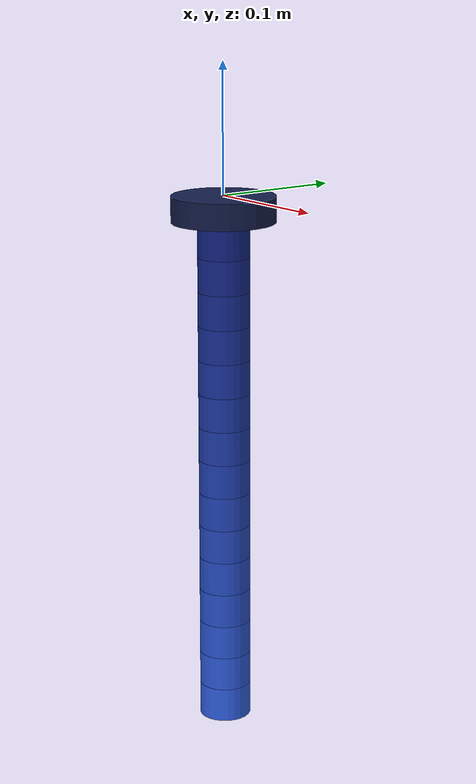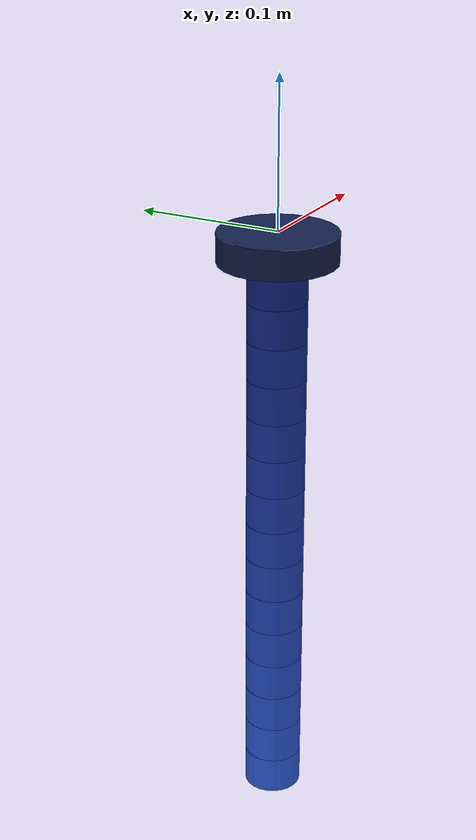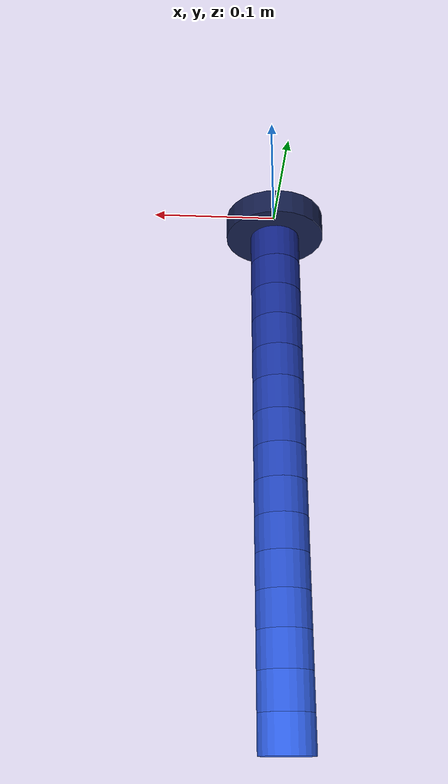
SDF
<?xml version="1.0" encoding="UTF-8"?>
<sdf version='1.9'>
  <model name='continuum_arm_pcc'>
    <self_collide>false</self_collide>
    <static>false</static>

    <link name="continuum_arm_pcc/base_cyl">
      <pose>0 0 -0.01000 0 0 0</pose>
      <gravity>true</gravity>
      <self_collide>false</self_collide>
      <velocity_decay/>
      <inertial>
        <mass>0.078431</mass>
        <inertia>
          <ixx>3.398693e-05</ixx>
          <iyy>3.398693e-05</iyy>
          <izz>6.274510e-05</izz>
        </inertia>
      </inertial>
      <collision name="continuum_arm_pcc/base_cyl_collision">
        <geometry>
          <cylinder><radius>0.04</radius><length>0.02</length></cylinder>
        </geometry>
      </collision>
      <visual name="continuum_arm_pcc/base_cyl_visual">
        <geometry>
          <cylinder><radius>0.04</radius><length>0.02</length></cylinder>
        </geometry>
        <material>
          <ambient>0.05 0.08 0.20 1</ambient>
          <diffuse>0.08 0.12 0.30 1</diffuse>
          <specular>0.2 0.2 0.2 1</specular>
        </material>
      </visual>
    </link>
    <!-- Segment 1/15 -->
    <link name="continuum_arm_pcc/segment_1">
      <pose>0 0 -0.03333 0 0 0</pose>
      <gravity>true</gravity>
      <self_collide>false</self_collide>
      <velocity_decay/>
      <inertial>
        <mass>0.011438</mass>
        <inertia>
          <ixx>2.464975e-06</ixx>
          <iyy>2.464975e-06</iyy>
          <izz>3.574346e-06</izz>
        </inertia>
      </inertial>
      <collision name="continuum_arm_pcc/segment_1_collision">
        <geometry>
          <cylinder><radius>0.02</radius><length>0.02666666666666667</length></cylinder>
        </geometry>
      </collision>
      <visual name="continuum_arm_pcc/segment_1_visual">
        <geometry>
          <cylinder><radius>0.02</radius><length>0.02666666666666667</length></cylinder>
        </geometry>
        <material>
          <ambient>0.050 0.080 0.350 1</ambient>
          <diffuse>0.080 0.150 0.550 1</diffuse>
          <specular>0.2 0.2 0.2 1</specular>
        </material>
      </visual>
    </link>
    <joint name="continuum_arm_pcc/joint_1" type="universal">
      <parent>continuum_arm_pcc/base_cyl</parent>
      <child>continuum_arm_pcc/segment_1</child>
      <pose>0 0 0.01333 0 0 0</pose>
      <axis>
        <xyz>1 0 0</xyz>
        <limit>
          <lower>-0.8</lower>
          <upper>0.8</upper>
          <effort>0.24</effort>
          <velocity>5.0</velocity>
        </limit>
        <dynamics>
          <spring_stiffness>1.61068</spring_stiffness>
          <spring_reference>0.0</spring_reference>
          <damping>0.08</damping>
        </dynamics>
      </axis>
      <axis2>
        <xyz>0 1 0</xyz>
        <limit>
          <lower>-0.8</lower>
          <upper>0.8</upper>
          <effort>0.24</effort>
          <velocity>5.0</velocity>
        </limit>
        <dynamics>
          <spring_stiffness>1.61068</spring_stiffness>
          <spring_reference>0.0</spring_reference>
          <damping>0.08</damping>
        </dynamics>
      </axis2>
    </joint>
    <!-- Segment 2/15 -->
    <link name="continuum_arm_pcc/segment_2">
      <pose>0 0 -0.06000 0 0 0</pose>
      <gravity>true</gravity>
      <self_collide>false</self_collide>
      <velocity_decay/>
      <inertial>
        <mass>0.011438</mass>
        <inertia>
          <ixx>2.464975e-06</ixx>
          <iyy>2.464975e-06</iyy>
          <izz>3.574346e-06</izz>
        </inertia>
      </inertial>
      <collision name="continuum_arm_pcc/segment_2_collision">
        <geometry>
          <cylinder><radius>0.02</radius><length>0.02666666666666667</length></cylinder>
        </geometry>
      </collision>
      <visual name="continuum_arm_pcc/segment_2_visual">
        <geometry>
          <cylinder><radius>0.02</radius><length>0.02666666666666667</length></cylinder>
        </geometry>
        <material>
          <ambient>0.057 0.093 0.382 1</ambient>
          <diffuse>0.089 0.168 0.579 1</diffuse>
          <specular>0.2 0.2 0.2 1</specular>
        </material>
      </visual>
    </link>
    <joint name="continuum_arm_pcc/joint_2" type="universal">
      <parent>continuum_arm_pcc/segment_1</parent>
      <child>continuum_arm_pcc/segment_2</child>
      <pose>0 0 0.01333 0 0 0</pose>
      <axis>
        <xyz>1 0 0</xyz>
        <limit>
          <lower>-0.8</lower>
          <upper>0.8</upper>
          <effort>0.24</effort>
          <velocity>5.0</velocity>
        </limit>
        <dynamics>
          <spring_stiffness>1.61068</spring_stiffness>
          <spring_reference>0.0</spring_reference>
          <damping>0.08</damping>
        </dynamics>
      </axis>
      <axis2>
        <xyz>0 1 0</xyz>
        <limit>
          <lower>-0.8</lower>
          <upper>0.8</upper>
          <effort>0.24</effort>
          <velocity>5.0</velocity>
        </limit>
        <dynamics>
          <spring_stiffness>1.61068</spring_stiffness>
          <spring_reference>0.0</spring_reference>
          <damping>0.08</damping>
        </dynamics>
      </axis2>
    </joint>
    <!-- Segment 3/15 -->
    <link name="continuum_arm_pcc/segment_3">
      <pose>0 0 -0.08667 0 0 0</pose>
      <gravity>true</gravity>
      <self_collide>false</self_collide>
      <velocity_decay/>
      <inertial>
        <mass>0.011438</mass>
        <inertia>
          <ixx>2.464975e-06</ixx>
          <iyy>2.464975e-06</iyy>
          <izz>3.574346e-06</izz>
        </inertia>
      </inertial>
      <collision name="continuum_arm_pcc/segment_3_collision">
        <geometry>
          <cylinder><radius>0.02</radius><length>0.02666666666666667</length></cylinder>
        </geometry>
      </collision>
      <visual name="continuum_arm_pcc/segment_3_visual">
        <geometry>
          <cylinder><radius>0.02</radius><length>0.02666666666666667</length></cylinder>
        </geometry>
        <material>
          <ambient>0.064 0.106 0.414 1</ambient>
          <diffuse>0.097 0.186 0.607 1</diffuse>
          <specular>0.2 0.2 0.2 1</specular>
        </material>
      </visual>
    </link>
    <joint name="continuum_arm_pcc/joint_3" type="universal">
      <parent>continuum_arm_pcc/segment_2</parent>
      <child>continuum_arm_pcc/segment_3</child>
      <pose>0 0 0.01333 0 0 0</pose>
      <axis>
        <xyz>1 0 0</xyz>
        <limit>
          <lower>-0.8</lower>
          <upper>0.8</upper>
          <effort>0.24</effort>
          <velocity>5.0</velocity>
        </limit>
        <dynamics>
          <spring_stiffness>1.61068</spring_stiffness>
          <spring_reference>0.0</spring_reference>
          <damping>0.08</damping>
        </dynamics>
      </axis>
      <axis2>
        <xyz>0 1 0</xyz>
        <limit>
          <lower>-0.8</lower>
          <upper>0.8</upper>
          <effort>0.24</effort>
          <velocity>5.0</velocity>
        </limit>
        <dynamics>
          <spring_stiffness>1.61068</spring_stiffness>
          <spring_reference>0.0</spring_reference>
          <damping>0.08</damping>
        </dynamics>
      </axis2>
    </joint>
    <!-- Segment 4/15 -->
    <link name="continuum_arm_pcc/segment_4">
      <pose>0 0 -0.11333 0 0 0</pose>
      <gravity>true</gravity>
      <self_collide>false</self_collide>
      <velocity_decay/>
      <inertial>
        <mass>0.011438</mass>
        <inertia>
          <ixx>2.464975e-06</ixx>
          <iyy>2.464975e-06</iyy>
          <izz>3.574346e-06</izz>
        </inertia>
      </inertial>
      <collision name="continuum_arm_pcc/segment_4_collision">
        <geometry>
          <cylinder><radius>0.02</radius><length>0.02666666666666667</length></cylinder>
        </geometry>
      </collision>
      <visual name="continuum_arm_pcc/segment_4_visual">
        <geometry>
          <cylinder><radius>0.02</radius><length>0.02666666666666667</length></cylinder>
        </geometry>
        <material>
          <ambient>0.071 0.119 0.446 1</ambient>
          <diffuse>0.106 0.204 0.636 1</diffuse>
          <specular>0.2 0.2 0.2 1</specular>
        </material>
      </visual>
    </link>
    <joint name="continuum_arm_pcc/joint_4" type="universal">
      <parent>continuum_arm_pcc/segment_3</parent>
      <child>continuum_arm_pcc/segment_4</child>
      <pose>0 0 0.01333 0 0 0</pose>
      <axis>
        <xyz>1 0 0</xyz>
        <limit>
          <lower>-0.8</lower>
          <upper>0.8</upper>
          <effort>0.24</effort>
          <velocity>5.0</velocity>
        </limit>
        <dynamics>
          <spring_stiffness>1.61068</spring_stiffness>
          <spring_reference>0.0</spring_reference>
          <damping>0.08</damping>
        </dynamics>
      </axis>
      <axis2>
        <xyz>0 1 0</xyz>
        <limit>
          <lower>-0.8</lower>
          <upper>0.8</upper>
          <effort>0.24</effort>
          <velocity>5.0</velocity>
        </limit>
        <dynamics>
          <spring_stiffness>1.61068</spring_stiffness>
          <spring_reference>0.0</spring_reference>
          <damping>0.08</damping>
        </dynamics>
      </axis2>
    </joint>
    <!-- Segment 5/15 -->
    <link name="continuum_arm_pcc/segment_5">
      <pose>0 0 -0.14000 0 0 0</pose>
      <gravity>true</gravity>
      <self_collide>false</self_collide>
      <velocity_decay/>
      <inertial>
        <mass>0.011438</mass>
        <inertia>
          <ixx>2.464975e-06</ixx>
          <iyy>2.464975e-06</iyy>
          <izz>3.574346e-06</izz>
        </inertia>
      </inertial>
      <collision name="continuum_arm_pcc/segment_5_collision">
        <geometry>
          <cylinder><radius>0.02</radius><length>0.02666666666666667</length></cylinder>
        </geometry>
      </collision>
      <visual name="continuum_arm_pcc/segment_5_visual">
        <geometry>
          <cylinder><radius>0.02</radius><length>0.02666666666666667</length></cylinder>
        </geometry>
        <material>
          <ambient>0.079 0.131 0.479 1</ambient>
          <diffuse>0.114 0.221 0.664 1</diffuse>
          <specular>0.2 0.2 0.2 1</specular>
        </material>
      </visual>
    </link>
    <joint name="continuum_arm_pcc/joint_5" type="universal">
      <parent>continuum_arm_pcc/segment_4</parent>
      <child>continuum_arm_pcc/segment_5</child>
      <pose>0 0 0.01333 0 0 0</pose>
      <axis>
        <xyz>1 0 0</xyz>
        <limit>
          <lower>-0.8</lower>
          <upper>0.8</upper>
          <effort>0.24</effort>
          <velocity>5.0</velocity>
        </limit>
        <dynamics>
          <spring_stiffness>1.61068</spring_stiffness>
          <spring_reference>0.0</spring_reference>
          <damping>0.08</damping>
        </dynamics>
      </axis>
      <axis2>
        <xyz>0 1 0</xyz>
        <limit>
          <lower>-0.8</lower>
          <upper>0.8</upper>
          <effort>0.24</effort>
          <velocity>5.0</velocity>
        </limit>
        <dynamics>
          <spring_stiffness>1.61068</spring_stiffness>
          <spring_reference>0.0</spring_reference>
          <damping>0.08</damping>
        </dynamics>
      </axis2>
    </joint>
    <!-- Segment 6/15 -->
    <link name="continuum_arm_pcc/segment_6">
      <pose>0 0 -0.16667 0 0 0</pose>
      <gravity>true</gravity>
      <self_collide>false</self_collide>
      <velocity_decay/>
      <inertial>
        <mass>0.011438</mass>
        <inertia>
          <ixx>2.464975e-06</ixx>
          <iyy>2.464975e-06</iyy>
          <izz>3.574346e-06</izz>
        </inertia>
      </inertial>
      <collision name="continuum_arm_pcc/segment_6_collision">
        <geometry>
          <cylinder><radius>0.02</radius><length>0.02666666666666667</length></cylinder>
        </geometry>
      </collision>
      <visual name="continuum_arm_pcc/segment_6_visual">
        <geometry>
          <cylinder><radius>0.02</radius><length>0.02666666666666667</length></cylinder>
        </geometry>
        <material>
          <ambient>0.086 0.144 0.511 1</ambient>
          <diffuse>0.123 0.239 0.693 1</diffuse>
          <specular>0.2 0.2 0.2 1</specular>
        </material>
      </visual>
    </link>
    <joint name="continuum_arm_pcc/joint_6" type="universal">
      <parent>continuum_arm_pcc/segment_5</parent>
      <child>continuum_arm_pcc/segment_6</child>
      <pose>0 0 0.01333 0 0 0</pose>
      <axis>
        <xyz>1 0 0</xyz>
        <limit>
          <lower>-0.8</lower>
          <upper>0.8</upper>
          <effort>0.24</effort>
          <velocity>5.0</velocity>
        </limit>
        <dynamics>
          <spring_stiffness>1.61068</spring_stiffness>
          <spring_reference>0.0</spring_reference>
          <damping>0.08</damping>
        </dynamics>
      </axis>
      <axis2>
        <xyz>0 1 0</xyz>
        <limit>
          <lower>-0.8</lower>
          <upper>0.8</upper>
          <effort>0.24</effort>
          <velocity>5.0</velocity>
        </limit>
        <dynamics>
          <spring_stiffness>1.61068</spring_stiffness>
          <spring_reference>0.0</spring_reference>
          <damping>0.08</damping>
        </dynamics>
      </axis2>
    </joint>
    <!-- Segment 7/15 -->
    <link name="continuum_arm_pcc/segment_7">
      <pose>0 0 -0.19333 0 0 0</pose>
      <gravity>true</gravity>
      <self_collide>false</self_collide>
      <velocity_decay/>
      <inertial>
        <mass>0.011438</mass>
        <inertia>
          <ixx>2.464975e-06</ixx>
          <iyy>2.464975e-06</iyy>
          <izz>3.574346e-06</izz>
        </inertia>
      </inertial>
      <collision name="continuum_arm_pcc/segment_7_collision">
        <geometry>
          <cylinder><radius>0.02</radius><length>0.02666666666666667</length></cylinder>
        </geometry>
      </collision>
      <visual name="continuum_arm_pcc/segment_7_visual">
        <geometry>
          <cylinder><radius>0.02</radius><length>0.02666666666666667</length></cylinder>
        </geometry>
        <material>
          <ambient>0.093 0.157 0.543 1</ambient>
          <diffuse>0.131 0.257 0.721 1</diffuse>
          <specular>0.2 0.2 0.2 1</specular>
        </material>
      </visual>
    </link>
    <joint name="continuum_arm_pcc/joint_7" type="universal">
      <parent>continuum_arm_pcc/segment_6</parent>
      <child>continuum_arm_pcc/segment_7</child>
      <pose>0 0 0.01333 0 0 0</pose>
      <axis>
        <xyz>1 0 0</xyz>
        <limit>
          <lower>-0.8</lower>
          <upper>0.8</upper>
          <effort>0.24</effort>
          <velocity>5.0</velocity>
        </limit>
        <dynamics>
          <spring_stiffness>1.61068</spring_stiffness>
          <spring_reference>0.0</spring_reference>
          <damping>0.08</damping>
        </dynamics>
      </axis>
      <axis2>
        <xyz>0 1 0</xyz>
        <limit>
          <lower>-0.8</lower>
          <upper>0.8</upper>
          <effort>0.24</effort>
          <velocity>5.0</velocity>
        </limit>
        <dynamics>
          <spring_stiffness>1.61068</spring_stiffness>
          <spring_reference>0.0</spring_reference>
          <damping>0.08</damping>
        </dynamics>
      </axis2>
    </joint>
    <!-- Segment 8/15 -->
    <link name="continuum_arm_pcc/segment_8">
      <pose>0 0 -0.22000 0 0 0</pose>
      <gravity>true</gravity>
      <self_collide>false</self_collide>
      <velocity_decay/>
      <inertial>
        <mass>0.011438</mass>
        <inertia>
          <ixx>2.464975e-06</ixx>
          <iyy>2.464975e-06</iyy>
          <izz>3.574346e-06</izz>
        </inertia>
      </inertial>
      <collision name="continuum_arm_pcc/segment_8_collision">
        <geometry>
          <cylinder><radius>0.02</radius><length>0.02666666666666667</length></cylinder>
        </geometry>
      </collision>
      <visual name="continuum_arm_pcc/segment_8_visual">
        <geometry>
          <cylinder><radius>0.02</radius><length>0.02666666666666667</length></cylinder>
        </geometry>
        <material>
          <ambient>0.100 0.170 0.575 1</ambient>
          <diffuse>0.140 0.275 0.750 1</diffuse>
          <specular>0.2 0.2 0.2 1</specular>
        </material>
      </visual>
    </link>
    <joint name="continuum_arm_pcc/joint_8" type="universal">
      <parent>continuum_arm_pcc/segment_7</parent>
      <child>continuum_arm_pcc/segment_8</child>
      <pose>0 0 0.01333 0 0 0</pose>
      <axis>
        <xyz>1 0 0</xyz>
        <limit>
          <lower>-0.8</lower>
          <upper>0.8</upper>
          <effort>0.24</effort>
          <velocity>5.0</velocity>
        </limit>
        <dynamics>
          <spring_stiffness>1.61068</spring_stiffness>
          <spring_reference>0.0</spring_reference>
          <damping>0.08</damping>
        </dynamics>
      </axis>
      <axis2>
        <xyz>0 1 0</xyz>
        <limit>
          <lower>-0.8</lower>
          <upper>0.8</upper>
          <effort>0.24</effort>
          <velocity>5.0</velocity>
        </limit>
        <dynamics>
          <spring_stiffness>1.61068</spring_stiffness>
          <spring_reference>0.0</spring_reference>
          <damping>0.08</damping>
        </dynamics>
      </axis2>
    </joint>
    <!-- Segment 9/15 -->
    <link name="continuum_arm_pcc/segment_9">
      <pose>0 0 -0.24667 0 0 0</pose>
      <gravity>true</gravity>
      <self_collide>false</self_collide>
      <velocity_decay/>
      <inertial>
        <mass>0.011438</mass>
        <inertia>
          <ixx>2.464975e-06</ixx>
          <iyy>2.464975e-06</iyy>
          <izz>3.574346e-06</izz>
        </inertia>
      </inertial>
      <collision name="continuum_arm_pcc/segment_9_collision">
        <geometry>
          <cylinder><radius>0.02</radius><length>0.02666666666666667</length></cylinder>
        </geometry>
      </collision>
      <visual name="continuum_arm_pcc/segment_9_visual">
        <geometry>
          <cylinder><radius>0.02</radius><length>0.02666666666666667</length></cylinder>
        </geometry>
        <material>
          <ambient>0.107 0.183 0.607 1</ambient>
          <diffuse>0.149 0.293 0.779 1</diffuse>
          <specular>0.2 0.2 0.2 1</specular>
        </material>
      </visual>
    </link>
    <joint name="continuum_arm_pcc/joint_9" type="universal">
      <parent>continuum_arm_pcc/segment_8</parent>
      <child>continuum_arm_pcc/segment_9</child>
      <pose>0 0 0.01333 0 0 0</pose>
      <axis>
        <xyz>1 0 0</xyz>
        <limit>
          <lower>-0.8</lower>
          <upper>0.8</upper>
          <effort>0.24</effort>
          <velocity>5.0</velocity>
        </limit>
        <dynamics>
          <spring_stiffness>1.61068</spring_stiffness>
          <spring_reference>0.0</spring_reference>
          <damping>0.08</damping>
        </dynamics>
      </axis>
      <axis2>
        <xyz>0 1 0</xyz>
        <limit>
          <lower>-0.8</lower>
          <upper>0.8</upper>
          <effort>0.24</effort>
          <velocity>5.0</velocity>
        </limit>
        <dynamics>
          <spring_stiffness>1.61068</spring_stiffness>
          <spring_reference>0.0</spring_reference>
          <damping>0.08</damping>
        </dynamics>
      </axis2>
    </joint>
    <!-- Segment 10/15 -->
    <link name="continuum_arm_pcc/segment_10">
      <pose>0 0 -0.27333 0 0 0</pose>
      <gravity>true</gravity>
      <self_collide>false</self_collide>
      <velocity_decay/>
      <inertial>
        <mass>0.011438</mass>
        <inertia>
          <ixx>2.464975e-06</ixx>
          <iyy>2.464975e-06</iyy>
          <izz>3.574346e-06</izz>
        </inertia>
      </inertial>
      <collision name="continuum_arm_pcc/segment_10_collision">
        <geometry>
          <cylinder><radius>0.02</radius><length>0.02666666666666667</length></cylinder>
        </geometry>
      </collision>
      <visual name="continuum_arm_pcc/segment_10_visual">
        <geometry>
          <cylinder><radius>0.02</radius><length>0.02666666666666667</length></cylinder>
        </geometry>
        <material>
          <ambient>0.114 0.196 0.639 1</ambient>
          <diffuse>0.157 0.311 0.807 1</diffuse>
          <specular>0.2 0.2 0.2 1</specular>
        </material>
      </visual>
    </link>
    <joint name="continuum_arm_pcc/joint_10" type="universal">
      <parent>continuum_arm_pcc/segment_9</parent>
      <child>continuum_arm_pcc/segment_10</child>
      <pose>0 0 0.01333 0 0 0</pose>
      <axis>
        <xyz>1 0 0</xyz>
        <limit>
          <lower>-0.8</lower>
          <upper>0.8</upper>
          <effort>0.24</effort>
          <velocity>5.0</velocity>
        </limit>
        <dynamics>
          <spring_stiffness>1.61068</spring_stiffness>
          <spring_reference>0.0</spring_reference>
          <damping>0.08</damping>
        </dynamics>
      </axis>
      <axis2>
        <xyz>0 1 0</xyz>
        <limit>
          <lower>-0.8</lower>
          <upper>0.8</upper>
          <effort>0.24</effort>
          <velocity>5.0</velocity>
        </limit>
        <dynamics>
          <spring_stiffness>1.61068</spring_stiffness>
          <spring_reference>0.0</spring_reference>
          <damping>0.08</damping>
        </dynamics>
      </axis2>
    </joint>
    <!-- Segment 11/15 -->
    <link name="continuum_arm_pcc/segment_11">
      <pose>0 0 -0.30000 0 0 0</pose>
      <gravity>true</gravity>
      <self_collide>false</self_collide>
      <velocity_decay/>
      <inertial>
        <mass>0.011438</mass>
        <inertia>
          <ixx>2.464975e-06</ixx>
          <iyy>2.464975e-06</iyy>
          <izz>3.574346e-06</izz>
        </inertia>
      </inertial>
      <collision name="continuum_arm_pcc/segment_11_collision">
        <geometry>
          <cylinder><radius>0.02</radius><length>0.02666666666666667</length></cylinder>
        </geometry>
      </collision>
      <visual name="continuum_arm_pcc/segment_11_visual">
        <geometry>
          <cylinder><radius>0.02</radius><length>0.02666666666666667</length></cylinder>
        </geometry>
        <material>
          <ambient>0.121 0.209 0.671 1</ambient>
          <diffuse>0.166 0.329 0.836 1</diffuse>
          <specular>0.2 0.2 0.2 1</specular>
        </material>
      </visual>
    </link>
    <joint name="continuum_arm_pcc/joint_11" type="universal">
      <parent>continuum_arm_pcc/segment_10</parent>
      <child>continuum_arm_pcc/segment_11</child>
      <pose>0 0 0.01333 0 0 0</pose>
      <axis>
        <xyz>1 0 0</xyz>
        <limit>
          <lower>-0.8</lower>
          <upper>0.8</upper>
          <effort>0.24</effort>
          <velocity>5.0</velocity>
        </limit>
        <dynamics>
          <spring_stiffness>1.61068</spring_stiffness>
          <spring_reference>0.0</spring_reference>
          <damping>0.08</damping>
        </dynamics>
      </axis>
      <axis2>
        <xyz>0 1 0</xyz>
        <limit>
          <lower>-0.8</lower>
          <upper>0.8</upper>
          <effort>0.24</effort>
          <velocity>5.0</velocity>
        </limit>
        <dynamics>
          <spring_stiffness>1.61068</spring_stiffness>
          <spring_reference>0.0</spring_reference>
          <damping>0.08</damping>
        </dynamics>
      </axis2>
    </joint>
    <!-- Segment 12/15 -->
    <link name="continuum_arm_pcc/segment_12">
      <pose>0 0 -0.32667 0 0 0</pose>
      <gravity>true</gravity>
      <self_collide>false</self_collide>
      <velocity_decay/>
      <inertial>
        <mass>0.011438</mass>
        <inertia>
          <ixx>2.464975e-06</ixx>
          <iyy>2.464975e-06</iyy>
          <izz>3.574346e-06</izz>
        </inertia>
      </inertial>
      <collision name="continuum_arm_pcc/segment_12_collision">
        <geometry>
          <cylinder><radius>0.02</radius><length>0.02666666666666667</length></cylinder>
        </geometry>
      </collision>
      <visual name="continuum_arm_pcc/segment_12_visual">
        <geometry>
          <cylinder><radius>0.02</radius><length>0.02666666666666667</length></cylinder>
        </geometry>
        <material>
          <ambient>0.129 0.221 0.704 1</ambient>
          <diffuse>0.174 0.346 0.864 1</diffuse>
          <specular>0.2 0.2 0.2 1</specular>
        </material>
      </visual>
    </link>
    <joint name="continuum_arm_pcc/joint_12" type="universal">
      <parent>continuum_arm_pcc/segment_11</parent>
      <child>continuum_arm_pcc/segment_12</child>
      <pose>0 0 0.01333 0 0 0</pose>
      <axis>
        <xyz>1 0 0</xyz>
        <limit>
          <lower>-0.8</lower>
          <upper>0.8</upper>
          <effort>0.24</effort>
          <velocity>5.0</velocity>
        </limit>
        <dynamics>
          <spring_stiffness>1.61068</spring_stiffness>
          <spring_reference>0.0</spring_reference>
          <damping>0.08</damping>
        </dynamics>
      </axis>
      <axis2>
        <xyz>0 1 0</xyz>
        <limit>
          <lower>-0.8</lower>
          <upper>0.8</upper>
          <effort>0.24</effort>
          <velocity>5.0</velocity>
        </limit>
        <dynamics>
          <spring_stiffness>1.61068</spring_stiffness>
          <spring_reference>0.0</spring_reference>
          <damping>0.08</damping>
        </dynamics>
      </axis2>
    </joint>
    <!-- Segment 13/15 -->
    <link name="continuum_arm_pcc/segment_13">
      <pose>0 0 -0.35333 0 0 0</pose>
      <gravity>true</gravity>
      <self_collide>false</self_collide>
      <velocity_decay/>
      <inertial>
        <mass>0.011438</mass>
        <inertia>
          <ixx>2.464975e-06</ixx>
          <iyy>2.464975e-06</iyy>
          <izz>3.574346e-06</izz>
        </inertia>
      </inertial>
      <collision name="continuum_arm_pcc/segment_13_collision">
        <geometry>
          <cylinder><radius>0.02</radius><length>0.02666666666666667</length></cylinder>
        </geometry>
      </collision>
      <visual name="continuum_arm_pcc/segment_13_visual">
        <geometry>
          <cylinder><radius>0.02</radius><length>0.02666666666666667</length></cylinder>
        </geometry>
        <material>
          <ambient>0.136 0.234 0.736 1</ambient>
          <diffuse>0.183 0.364 0.893 1</diffuse>
          <specular>0.2 0.2 0.2 1</specular>
        </material>
      </visual>
    </link>
    <joint name="continuum_arm_pcc/joint_13" type="universal">
      <parent>continuum_arm_pcc/segment_12</parent>
      <child>continuum_arm_pcc/segment_13</child>
      <pose>0 0 0.01333 0 0 0</pose>
      <axis>
        <xyz>1 0 0</xyz>
        <limit>
          <lower>-0.8</lower>
          <upper>0.8</upper>
          <effort>0.24</effort>
          <velocity>5.0</velocity>
        </limit>
        <dynamics>
          <spring_stiffness>1.61068</spring_stiffness>
          <spring_reference>0.0</spring_reference>
          <damping>0.08</damping>
        </dynamics>
      </axis>
      <axis2>
        <xyz>0 1 0</xyz>
        <limit>
          <lower>-0.8</lower>
          <upper>0.8</upper>
          <effort>0.24</effort>
          <velocity>5.0</velocity>
        </limit>
        <dynamics>
          <spring_stiffness>1.61068</spring_stiffness>
          <spring_reference>0.0</spring_reference>
          <damping>0.08</damping>
        </dynamics>
      </axis2>
    </joint>
    <!-- Segment 14/15 -->
    <link name="continuum_arm_pcc/segment_14">
      <pose>0 0 -0.38000 0 0 0</pose>
      <gravity>true</gravity>
      <self_collide>false</self_collide>
      <velocity_decay/>
      <inertial>
        <mass>0.011438</mass>
        <inertia>
          <ixx>2.464975e-06</ixx>
          <iyy>2.464975e-06</iyy>
          <izz>3.574346e-06</izz>
        </inertia>
      </inertial>
      <collision name="continuum_arm_pcc/segment_14_collision">
        <geometry>
          <cylinder><radius>0.02</radius><length>0.02666666666666667</length></cylinder>
        </geometry>
      </collision>
      <visual name="continuum_arm_pcc/segment_14_visual">
        <geometry>
          <cylinder><radius>0.02</radius><length>0.02666666666666667</length></cylinder>
        </geometry>
        <material>
          <ambient>0.143 0.247 0.768 1</ambient>
          <diffuse>0.191 0.382 0.921 1</diffuse>
          <specular>0.2 0.2 0.2 1</specular>
        </material>
      </visual>
    </link>
    <joint name="continuum_arm_pcc/joint_14" type="universal">
      <parent>continuum_arm_pcc/segment_13</parent>
      <child>continuum_arm_pcc/segment_14</child>
      <pose>0 0 0.01333 0 0 0</pose>
      <axis>
        <xyz>1 0 0</xyz>
        <limit>
          <lower>-0.8</lower>
          <upper>0.8</upper>
          <effort>0.24</effort>
          <velocity>5.0</velocity>
        </limit>
        <dynamics>
          <spring_stiffness>1.61068</spring_stiffness>
          <spring_reference>0.0</spring_reference>
          <damping>0.08</damping>
        </dynamics>
      </axis>
      <axis2>
        <xyz>0 1 0</xyz>
        <limit>
          <lower>-0.8</lower>
          <upper>0.8</upper>
          <effort>0.24</effort>
          <velocity>5.0</velocity>
        </limit>
        <dynamics>
          <spring_stiffness>1.61068</spring_stiffness>
          <spring_reference>0.0</spring_reference>
          <damping>0.08</damping>
        </dynamics>
      </axis2>
    </joint>
    <!-- Segment 15/15 -->
    <link name="continuum_arm_pcc/segment_15">
      <pose>0 0 -0.40667 0 0 0</pose>
      <gravity>true</gravity>
      <self_collide>false</self_collide>
      <velocity_decay/>
      <inertial>
        <mass>0.011438</mass>
        <inertia>
          <ixx>2.464975e-06</ixx>
          <iyy>2.464975e-06</iyy>
          <izz>3.574346e-06</izz>
        </inertia>
      </inertial>
      <collision name="continuum_arm_pcc/segment_15_collision">
        <geometry>
          <cylinder><radius>0.02</radius><length>0.02666666666666667</length></cylinder>
        </geometry>
      </collision>
      <visual name="continuum_arm_pcc/segment_15_visual">
        <geometry>
          <cylinder><radius>0.02</radius><length>0.02666666666666667</length></cylinder>
        </geometry>
        <material>
          <ambient>0.150 0.260 0.800 1</ambient>
          <diffuse>0.200 0.400 0.950 1</diffuse>
          <specular>0.2 0.2 0.2 1</specular>
        </material>
      </visual>
    </link>
    <joint name="continuum_arm_pcc/joint_15" type="universal">
      <parent>continuum_arm_pcc/segment_14</parent>
      <child>continuum_arm_pcc/segment_15</child>
      <pose>0 0 0.01333 0 0 0</pose>
      <axis>
        <xyz>1 0 0</xyz>
        <limit>
          <lower>-0.8</lower>
          <upper>0.8</upper>
          <effort>0.24</effort>
          <velocity>5.0</velocity>
        </limit>
        <dynamics>
          <spring_stiffness>1.61068</spring_stiffness>
          <spring_reference>0.0</spring_reference>
          <damping>0.08</damping>
        </dynamics>
      </axis>
      <axis2>
        <xyz>0 1 0</xyz>
        <limit>
          <lower>-0.8</lower>
          <upper>0.8</upper>
          <effort>0.24</effort>
          <velocity>5.0</velocity>
        </limit>
        <dynamics>
          <spring_stiffness>1.61068</spring_stiffness>
          <spring_reference>0.0</spring_reference>
          <damping>0.08</damping>
        </dynamics>
      </axis2>
    </joint>

    <plugin filename="TendonArmController" name="tendon_arm_controller::TendonArmController">
      <joint_name>continuum_arm_pcc/joint_1</joint_name>
      <joint_name>continuum_arm_pcc/joint_2</joint_name>
      <joint_name>continuum_arm_pcc/joint_3</joint_name>
      <joint_name>continuum_arm_pcc/joint_4</joint_name>
      <joint_name>continuum_arm_pcc/joint_5</joint_name>
      <joint_name>continuum_arm_pcc/joint_6</joint_name>
      <joint_name>continuum_arm_pcc/joint_7</joint_name>
      <joint_name>continuum_arm_pcc/joint_8</joint_name>
      <joint_name>continuum_arm_pcc/joint_9</joint_name>
      <joint_name>continuum_arm_pcc/joint_10</joint_name>
      <joint_name>continuum_arm_pcc/joint_11</joint_name>
      <joint_name>continuum_arm_pcc/joint_12</joint_name>
      <joint_name>continuum_arm_pcc/joint_13</joint_name>
      <joint_name>continuum_arm_pcc/joint_14</joint_name>
      <joint_name>continuum_arm_pcc/joint_15</joint_name>
      <pitch_radius>0.015</pitch_radius>
      <rest_length>0.4</rest_length>
      <position_p_gain>5.0</position_p_gain>
      <position_d_gain>0.05</position_d_gain>
      <effort_limit>0.24</effort_limit>
      <tendon_topic>/continuum_arm_pcc/tendon_cmd</tendon_topic>
      <angles_topic>/continuum_arm_pcc/bend_angles</angles_topic>
      <command_filter_omega>2.92</command_filter_omega>
      <max_tendon_rate_m_s>0.06</max_tendon_rate_m_s>
    </plugin>

    <!-- Joint state feedback (actual, physics-integrated angles), same
         pattern rigid_arm_3link uses - lets the test script verify the arm
         actually bent the way the tendon command intended. -->
    <plugin filename="gz-sim-joint-state-publisher-system" name="gz::sim::systems::JointStatePublisher">
      <topic>/continuum_arm_pcc/joint_states</topic>
      <joint_name>continuum_arm_pcc/joint_1</joint_name>
      <joint_name>continuum_arm_pcc/joint_2</joint_name>
      <joint_name>continuum_arm_pcc/joint_3</joint_name>
      <joint_name>continuum_arm_pcc/joint_4</joint_name>
      <joint_name>continuum_arm_pcc/joint_5</joint_name>
      <joint_name>continuum_arm_pcc/joint_6</joint_name>
      <joint_name>continuum_arm_pcc/joint_7</joint_name>
      <joint_name>continuum_arm_pcc/joint_8</joint_name>
      <joint_name>continuum_arm_pcc/joint_9</joint_name>
      <joint_name>continuum_arm_pcc/joint_10</joint_name>
      <joint_name>continuum_arm_pcc/joint_11</joint_name>
      <joint_name>continuum_arm_pcc/joint_12</joint_name>
      <joint_name>continuum_arm_pcc/joint_13</joint_name>
      <joint_name>continuum_arm_pcc/joint_14</joint_name>
      <joint_name>continuum_arm_pcc/joint_15</joint_name>
    </plugin>

  </model>
</sdf>
